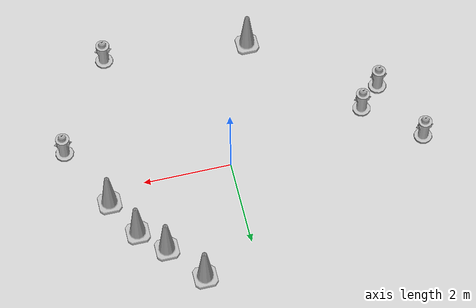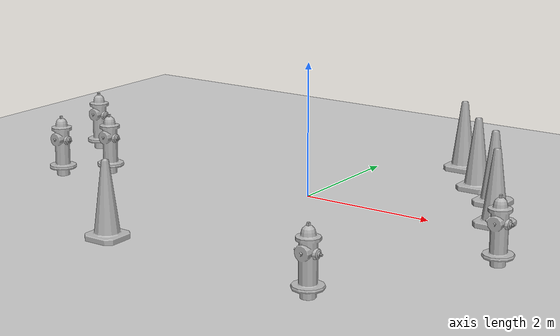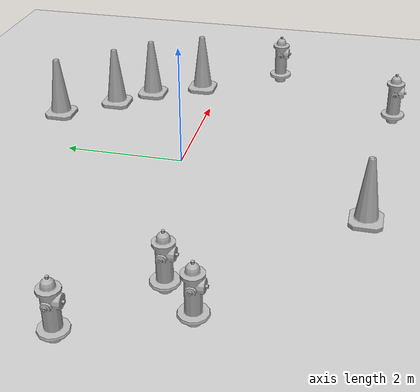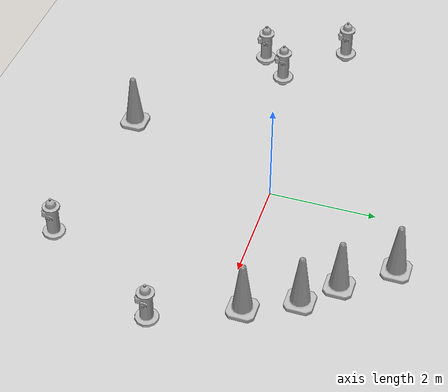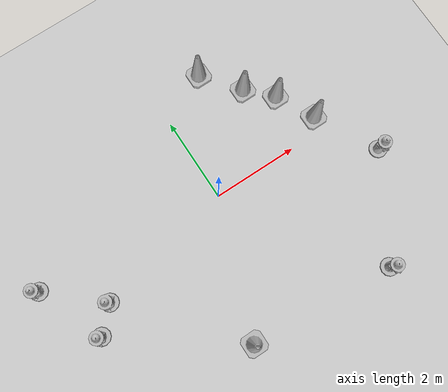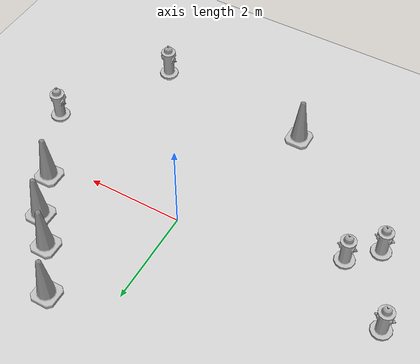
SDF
<sdf version="1.7">
 <world name="default">
  <light name="sun" type="directional">
   <pose>0 0 10 0 -0 0</pose>
   <diffuse>0.8 0.8 0.8 1</diffuse>
   <specular>0.2 0.2 0.2 1</specular>
   <attenuation>
    <range>1000</range>
    <constant>0.9</constant>
    <linear>0.01</linear>
    <quadratic>0.001</quadratic>
   </attenuation>
   <direction>-0.5 0.1 -0.9</direction>
   <spot><inner_angle>0</inner_angle><outer_angle>0</outer_angle><falloff>0</falloff></spot>
  </light>
  <model name="ground_plane">
   <static>1</static>
   <link name="link">
    <collision name="collision">
     <geometry><plane><normal>0 0 1</normal><size>100 100</size></plane></geometry>
     <surface>
      <contact><collide_bitmask>65535</collide_bitmask></contact>
      <friction><ode><mu>100</mu><mu2>50</mu2></ode></friction>
     </surface>
    </collision>
    <visual name="visual">
     <cast_shadows>0</cast_shadows>
     <geometry><plane><normal>0 0 1</normal><size>100 100</size></plane></geometry>
     <material>
      <script><uri>file://media/materials/scripts/gazebo.material</uri><name>Gazebo/Grey</name></script>
     </material>
    </visual>
   </link>
  </model>
  <gravity>0 0 -9.8</gravity>
  <magnetic_field>6e-06 2.3e-05 -4.2e-05</magnetic_field>
  <atmosphere type="adiabatic"/>
  <physics type="ode">
   <max_step_size>0.001</max_step_size>
   <real_time_factor>1</real_time_factor>
   <real_time_update_rate>1000</real_time_update_rate>
  </physics>
  <scene><ambient>0.4 0.4 0.4 1</ambient><background>0.7 0.7 0.7 1</background><shadows>1</shadows></scene>
  <audio><device>default</device></audio>
  <spherical_coordinates>
   <surface_model>EARTH_WGS84</surface_model>
   <latitude_deg>0</latitude_deg>
   <longitude_deg>0</longitude_deg>
   <elevation>0</elevation>
   <heading_deg>0</heading_deg>
  </spherical_coordinates>
  <model name="fire_hydrant">
   <static>1</static>
   <link name="link">
    <collision name="collision">
     <geometry><mesh><uri>model://fire_hydrant/meshes/fire_hydrant.dae</uri></mesh></geometry>
    </collision>
    <visual name="visual">
     <geometry><mesh><uri>model://fire_hydrant/meshes/fire_hydrant.dae</uri></mesh></geometry>
    </visual>
   </link>
   <pose>-4.39626 0.356156 0 0 -0 0</pose>
  </model>
  <model name="fire_hydrant_0">
   <static>1</static>
   <link name="link">
    <collision name="collision">
     <geometry><mesh><uri>model://fire_hydrant/meshes/fire_hydrant.dae</uri></mesh></geometry>
    </collision>
    <visual name="visual">
     <geometry><mesh><uri>model://fire_hydrant/meshes/fire_hydrant.dae</uri></mesh></geometry>
    </visual>
   </link>
   <pose>-3.76257 -1.19632 0 0 -0 0</pose>
  </model>
  <model name="fire_hydrant_1">
   <static>1</static>
   <link name="link">
    <collision name="collision">
     <geometry><mesh><uri>model://fire_hydrant/meshes/fire_hydrant.dae</uri></mesh></geometry>
    </collision>
    <visual name="visual">
     <geometry><mesh><uri>model://fire_hydrant/meshes/fire_hydrant.dae</uri></mesh></geometry>
    </visual>
   </link>
   <pose>-3.24032 -0.680172 0 0 -0 0</pose>
  </model>
  <model name="fire_hydrant_2">
   <static>1</static>
   <link name="link">
    <collision name="collision">
     <geometry><mesh><uri>model://fire_hydrant/meshes/fire_hydrant.dae</uri></mesh></geometry>
    </collision>
    <visual name="visual">
     <geometry><mesh><uri>model://fire_hydrant/meshes/fire_hydrant.dae</uri></mesh></geometry>
    </visual>
   </link>
   <pose>2.23504 -3.36218 0 0 -0 0</pose>
  </model>
  <model name="fire_hydrant_3">
   <static>1</static>
   <link name="link">
    <collision name="collision">
     <geometry><mesh><uri>model://fire_hydrant/meshes/fire_hydrant.dae</uri></mesh></geometry>
    </collision>
    <visual name="visual">
     <geometry><mesh><uri>model://fire_hydrant/meshes/fire_hydrant.dae</uri></mesh></geometry>
    </visual>
   </link>
   <pose>3.58501 -1.08704 0 0 -0 0</pose>
  </model>
  <model name="Construction Cone">
   <link name="link">
    <collision name="collision">
     <geometry>
      <mesh><scale>10 10 10</scale><uri>model://construction_cone/meshes/construction_cone.dae</uri></mesh>
     </geometry>
    </collision>
    <visual name="visual">
     <geometry>
      <mesh><scale>10 10 10</scale><uri>model://construction_cone/meshes/construction_cone.dae</uri></mesh>
     </geometry>
    </visual>
    <inertial>
     <inertia><ixx>1</ixx><ixy>0</ixy><ixz>0</ixz><iyy>1</iyy><iyz>0</iyz><izz>1</izz></inertia>
     <mass>1</mass>
    </inertial>
   </link>
   <pose>2.84199 0.346177 -0 0 -0 0</pose>
  </model>
  <model name="Construction Cone_0">
   <link name="link">
    <collision name="collision">
     <geometry>
      <mesh><scale>10 10 10</scale><uri>model://construction_cone/meshes/construction_cone.dae</uri></mesh>
     </geometry>
    </collision>
    <visual name="visual">
     <geometry>
      <mesh><scale>10 10 10</scale><uri>model://construction_cone/meshes/construction_cone.dae</uri></mesh>
     </geometry>
    </visual>
    <inertial>
     <inertia><ixx>1</ixx><ixy>0</ixy><ixz>0</ixz><iyy>1</iyy><iyz>0</iyz><izz>1</izz></inertia>
     <mass>1</mass>
    </inertial>
   </link>
   <pose>2.38769 1.23113 -9e-06 0 -0 0</pose>
  </model>
  <model name="Construction Cone_1">
   <link name="link">
    <collision name="collision">
     <geometry>
      <mesh><scale>10 10 10</scale><uri>model://construction_cone/meshes/construction_cone.dae</uri></mesh>
     </geometry>
    </collision>
    <visual name="visual">
     <geometry>
      <mesh><scale>10 10 10</scale><uri>model://construction_cone/meshes/construction_cone.dae</uri></mesh>
     </geometry>
    </visual>
    <inertial>
     <inertia><ixx>1</ixx><ixy>0</ixy><ixz>0</ixz><iyy>1</iyy><iyz>0</iyz><izz>1</izz></inertia>
     <mass>1</mass>
    </inertial>
   </link>
   <pose>1.84933 1.77713 -6e-06 -4e-06 0 0</pose>
  </model>
  <model name="Construction Cone_2">
   <link name="link">
    <collision name="collision">
     <geometry>
      <mesh><scale>10 10 10</scale><uri>model://construction_cone/meshes/construction_cone.dae</uri></mesh>
     </geometry>
    </collision>
    <visual name="visual">
     <geometry>
      <mesh><scale>10 10 10</scale><uri>model://construction_cone/meshes/construction_cone.dae</uri></mesh>
     </geometry>
    </visual>
    <inertial>
     <inertia><ixx>1</ixx><ixy>0</ixy><ixz>0</ixz><iyy>1</iyy><iyz>0</iyz><izz>1</izz></inertia>
     <mass>1</mass>
    </inertial>
   </link>
   <pose>1.18744 2.63224 -0 0 -0 0</pose>
  </model>
  <model name="Construction Cone_3">
   <link name="link">
    <collision name="collision">
     <geometry>
      <mesh><scale>10 10 10</scale><uri>model://construction_cone/meshes/construction_cone.dae</uri></mesh>
     </geometry>
    </collision>
    <visual name="visual">
     <geometry>
      <mesh><scale>10 10 10</scale><uri>model://construction_cone/meshes/construction_cone.dae</uri></mesh>
     </geometry>
    </visual>
    <inertial>
     <inertia><ixx>1</ixx><ixy>0</ixy><ixz>0</ixz><iyy>1</iyy><iyz>0</iyz><izz>1</izz></inertia>
     <mass>1</mass>
    </inertial>
   </link>
   <pose>-1.13211 -3.11441 -0 0 -1e-06 0</pose>
  </model>
 </world>
</sdf>
